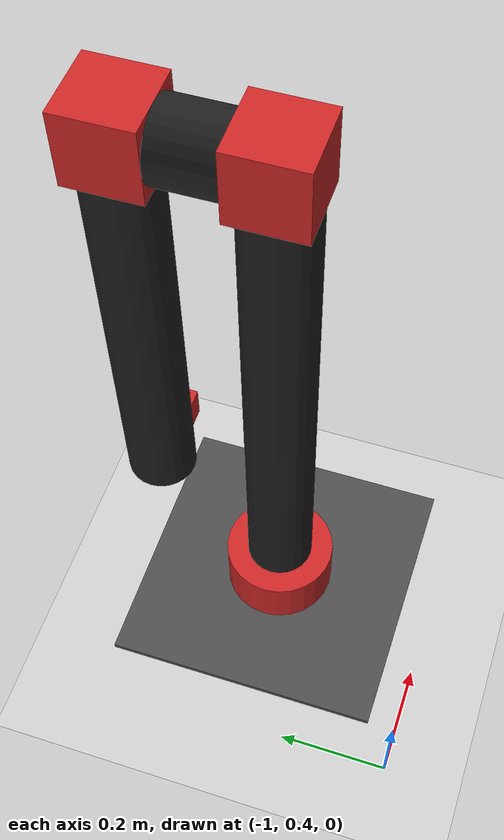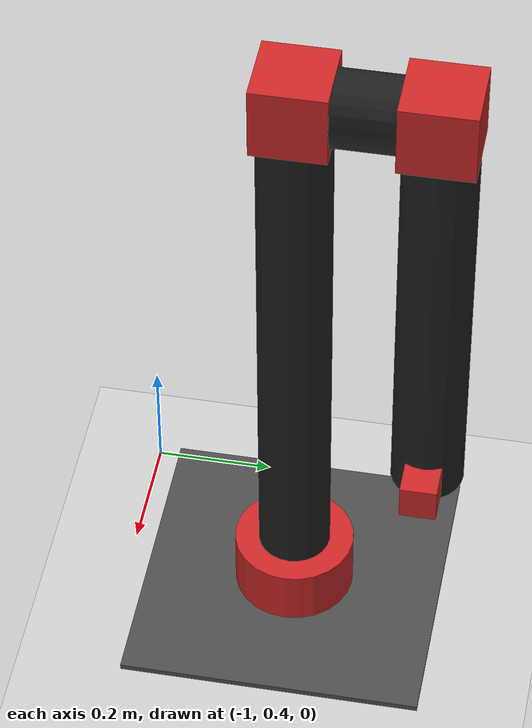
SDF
<sdf version="1.5">
 <world name="puzzle_world">
  <scene>
   <sky><clouds><speed>12.0</speed></clouds></sky>
   <shadows>true</shadows>
   <grid>false</grid>
   <origin_visual>false</origin_visual>
  </scene>
  <physics type="ode">
   <max_step_size>0.004</max_step_size>
   <real_time_factor>1</real_time_factor>
   <real_time_update_rate>250</real_time_update_rate>
   <magnetic_field>6.0e-6 2.3e-5 -4.2e-5</magnetic_field>
   <ode>
    <solver>
     <type>quick</type>
     <iters>10</iters>
     <sor>1.3</sor>
     <use_dynamic_moi_rescaling>0</use_dynamic_moi_rescaling>
    </solver>
    <constraints>
     <cfm>0</cfm>
     <erp>0.2</erp>
     <contact_max_correcting_vel>100</contact_max_correcting_vel>
     <contact_surface_layer>0.001</contact_surface_layer>
    </constraints>
   </ode>
  </physics>
  <include><uri>model://sun</uri></include>
  <include><uri>model://ground_plane</uri></include>
  <include><uri>model://asphalt_plane</uri></include>
  <include><uri>model://yp_gun</uri><pose>-0.7 0.7 0 0 0 0</pose></include>
 </world>
</sdf>

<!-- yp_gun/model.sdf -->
<sdf version='1.7'>
  <model name='yp_gun'>
    <pose>0 0 0 0 0 0</pose>
    <link name='base'>
      <inertial>
        <mass>2000</mass>
        <inertia>
          <ixx>10</ixx>
          <ixy>0</ixy>
          <ixz>0</ixz>
          <iyy>10</iyy>
          <iyz>0</iyz>
          <izz>10</izz>
        </inertia>
        <pose>0 0 0 0 0 0</pose>
      </inertial>
      <self_collide>0</self_collide>
      <enable_wind>0</enable_wind>
      <kinematic>0</kinematic>
      <pose>0 -0 0.125 0 -0 0</pose>
      <gravity>1</gravity>
      <visual name='visual_1'>
        <geometry>
          <cylinder>
            <radius>0.06</radius>
            <length>0.9</length>
          </cylinder>
        </geometry>
        <material>
          <script>
            <name>Gazebo/FlatBlack</name>
            <uri>file://media/materials/scripts/gazebo.material</uri>
          </script>
        </material>
        <pose>0 0 0.5 0 -0 0</pose>
        <transparency>0</transparency>
        <cast_shadows>1</cast_shadows>
      </visual>
      <visual name='visual'>
        <geometry>
          <cylinder>
            <radius>0.1</radius>
            <length>0.1</length>
          </cylinder>
        </geometry>
        <material>
          <script>
            <name>Gazebo/RedBright</name>
            <uri>file://media/materials/scripts/gazebo.material</uri>
          </script>
        </material>
        <pose>0 0 0 0 0 0</pose>
        <transparency>0</transparency>
        <cast_shadows>1</cast_shadows>
      </visual>
      <visual name='visual_2'>
        <geometry>
          <box>
            <size>0.5 0.5 0.01</size>
          </box>
        </geometry>
        <material>
          <script>
            <name>Gazebo/DarkGrey</name>
            <uri>file://media/materials/scripts/gazebo.material</uri>
          </script>
        </material>
        <pose>0 0 -0.055 0 -0 0</pose>
        <transparency>0</transparency>
        <cast_shadows>1</cast_shadows>
      </visual>
      <collision name='collision_2'>
        <laser_retro>0</laser_retro>
        <max_contacts>10</max_contacts>
        <pose>0 0 -0.055 0 -0 0</pose>
        <geometry>
          <box>
            <size>0.5 0.5 0.01</size>
          </box>
        </geometry>
        <surface>
          <friction>
            <ode>
              <mu>100</mu>
              <mu2>100</mu2>
              <fdir1>0 0 0</fdir1>
              <slip1>0</slip1>
              <slip2>0</slip2>
            </ode>
            <torsional>
              <coefficient>1</coefficient>
              <patch_radius>0</patch_radius>
              <surface_radius>0</surface_radius>
              <use_patch_radius>1</use_patch_radius>
              <ode>
                <slip>0</slip>
              </ode>
            </torsional>
          </friction>
          <bounce>
            <restitution_coefficient>0</restitution_coefficient>
            <threshold>1e+06</threshold>
          </bounce>
          <contact>
            <collide_without_contact>0</collide_without_contact>
            <collide_without_contact_bitmask>1</collide_without_contact_bitmask>
            <collide_bitmask>1</collide_bitmask>
            <ode>
              <soft_cfm>0</soft_cfm>
              <soft_erp>0.2</soft_erp>
              <kp>1e+13</kp>
              <kd>1</kd>
              <max_vel>0.01</max_vel>
              <min_depth>0</min_depth>
            </ode>
            <bullet>
              <split_impulse>1</split_impulse>
              <split_impulse_penetration_threshold>-0.01</split_impulse_penetration_threshold>
              <soft_cfm>0</soft_cfm>
              <soft_erp>0.2</soft_erp>
              <kp>1e+13</kp>
              <kd>1</kd>
            </bullet>
          </contact>
        </surface>
      </collision>
      <collision name='collision_1'>
        <laser_retro>0</laser_retro>
        <max_contacts>10</max_contacts>
        <pose>0 0 0.5 0 -0 0</pose>
        <geometry>
          <cylinder>
            <radius>0.06</radius>
            <length>0.9</length>
          </cylinder>
        </geometry>
        <surface>
          <friction>
            <ode>
              <mu>1</mu>
              <mu2>1</mu2>
              <fdir1>0 0 0</fdir1>
              <slip1>0</slip1>
              <slip2>0</slip2>
            </ode>
            <torsional>
              <coefficient>1</coefficient>
              <patch_radius>0</patch_radius>
              <surface_radius>0</surface_radius>
              <use_patch_radius>1</use_patch_radius>
              <ode>
                <slip>0</slip>
              </ode>
            </torsional>
          </friction>
          <bounce>
            <restitution_coefficient>0</restitution_coefficient>
            <threshold>1e+06</threshold>
          </bounce>
          <contact>
            <collide_without_contact>0</collide_without_contact>
            <collide_without_contact_bitmask>1</collide_without_contact_bitmask>
            <collide_bitmask>1</collide_bitmask>
            <ode>
              <soft_cfm>0</soft_cfm>
              <soft_erp>0.2</soft_erp>
              <kp>1e+13</kp>
              <kd>1</kd>
              <max_vel>0.01</max_vel>
              <min_depth>0</min_depth>
            </ode>
            <bullet>
              <split_impulse>1</split_impulse>
              <split_impulse_penetration_threshold>-0.01</split_impulse_penetration_threshold>
              <soft_cfm>0</soft_cfm>
              <soft_erp>0.2</soft_erp>
              <kp>1e+13</kp>
              <kd>1</kd>
            </bullet>
          </contact>
        </surface>
      </collision>
      <collision name='collision'>
        <laser_retro>0</laser_retro>
        <max_contacts>10</max_contacts>
        <pose>0 0 0 0 -0 0</pose>
        <geometry>
          <cylinder>
            <radius>0.1</radius>
            <length>0.1</length>
          </cylinder>
        </geometry>
        <surface>
          <friction>
            <ode>
              <mu>1</mu>
              <mu2>1</mu2>
              <fdir1>0 0 0</fdir1>
              <slip1>0</slip1>
              <slip2>0</slip2>
            </ode>
            <torsional>
              <coefficient>1</coefficient>
              <patch_radius>0</patch_radius>
              <surface_radius>0</surface_radius>
              <use_patch_radius>1</use_patch_radius>
              <ode>
                <slip>0</slip>
              </ode>
            </torsional>
          </friction>
          <bounce>
            <restitution_coefficient>0</restitution_coefficient>
            <threshold>1e+06</threshold>
          </bounce>
          <contact>
            <collide_without_contact>0</collide_without_contact>
            <collide_without_contact_bitmask>1</collide_without_contact_bitmask>
            <collide_bitmask>1</collide_bitmask>
            <ode>
              <soft_cfm>0</soft_cfm>
              <soft_erp>0.2</soft_erp>
              <kp>1e+13</kp>
              <kd>1</kd>
              <max_vel>0.01</max_vel>
              <min_depth>0</min_depth>
            </ode>
            <bullet>
              <split_impulse>1</split_impulse>
              <split_impulse_penetration_threshold>-0.01</split_impulse_penetration_threshold>
              <soft_cfm>0</soft_cfm>
              <soft_erp>0.2</soft_erp>
              <kp>1e+13</kp>
              <kd>1</kd>
            </bullet>
          </contact>
        </surface>
      </collision>
    </link>

    <link name='bullet_spawner'>
      <pose>-0.000279 0.22008 0.21715 2e-06 2e-06 -2.8e-05</pose>
      <gravity>0</gravity>
      <self_collide>0</self_collide>
      <kinematic>0</kinematic>
      <enable_wind>0</enable_wind>
      <inertial>
        <pose>0 0 0 0 -0 0</pose>
        <inertia>
          <ixx>.1</ixx>
          <ixy>0</ixy>
          <ixz>0</ixz>
          <iyy>.1</iyy>
          <iyz>0</iyz>
          <izz>.1</izz>
        </inertia>
        <mass>0.000001</mass>
      </inertial>
      <visual name='visual'>
        <pose>0 0 0 0 -0 0</pose>
        <geometry>
          <sphere>
            <radius>0.08</radius>
          </sphere>
        </geometry>
        <material>
          <lighting>1</lighting>
          <shader type='pixel'/>
        </material>
        <transparency>1</transparency>
        <cast_shadows>0</cast_shadows>
      </visual>
    </link>

    <link name='pitch_1'>
      <inertial>
        <mass>26.6242</mass>
        <inertia>
          <ixx>0.0159745</ixx>
          <ixy>0</ixy>
          <ixz>0</ixz>
          <iyy>0.0159745</iyy>
          <iyz>0</iyz>
          <izz>0.0159745</izz>
        </inertia>
        <pose>0 0 0 0 -0 0</pose>
      </inertial>
      <pose>-0 0.22 1.135 0 -0 0</pose>
      <self_collide>0</self_collide>
      <enable_wind>0</enable_wind>
      <kinematic>0</kinematic>
      <gravity>1</gravity>
      <visual name='visual'>
        <pose>0 0 0 0 -0 0</pose>
        <geometry>
          <box>
            <size>0.12 0.12 0.12</size>
          </box>
        </geometry>
        <material>
          <script>
            <name>Gazebo/RedBright</name>
            <uri>file://media/materials/scripts/gazebo.material</uri>
          </script>
        </material>
        <transparency>0</transparency>
        <cast_shadows>1</cast_shadows>
      </visual>
      <visual name='visual_1'>
        <geometry>
          <cylinder>
            <radius>0.06</radius>
            <length>0.7</length>
          </cylinder>
        </geometry>
        <material>
          <lighting>1</lighting>
          <script>
            <uri>file://media/materials/scripts/gazebo.material</uri>
            <name>Gazebo/FlatBlack</name>
          </script>
        </material>
        <pose>0 0 -0.41 0 -0 0</pose>
        <transparency>0</transparency>
        <cast_shadows>1</cast_shadows>
      </visual>
      <visual name='visual_2'>
        <pose>0.08 0 -0.72 0 -0 0</pose>
        <geometry>
          <box>
            <size>0.06 0.06 0.06</size>
          </box>
        </geometry>
        <material>
          <script>
            <name>Gazebo/RedBright</name>
            <uri>file://media/materials/scripts/gazebo.material</uri>
          </script>
        </material>
        <transparency>0</transparency>
        <cast_shadows>1</cast_shadows>
      </visual>

      <collision name='collision_3'>
        <laser_retro>0</laser_retro>
        <max_contacts>10</max_contacts>
        <pose>0.08 0 -0.72 0 -0 0</pose>
        <geometry>
          <box>
            <size>0.06 0.06 0.06</size>
          </box>
        </geometry>
        <surface>
          <friction>
            <ode>
              <mu>1</mu>
              <mu2>1</mu2>
              <fdir1>1 0 0</fdir1>
              <slip1>0</slip1>
              <slip2>0</slip2>
            </ode>
            <torsional>
              <coefficient>1</coefficient>
              <patch_radius>0</patch_radius>
              <surface_radius>0</surface_radius>
              <use_patch_radius>1</use_patch_radius>
              <ode>
                <slip>0</slip>
              </ode>
            </torsional>
          </friction>
          <bounce>
            <restitution_coefficient>0</restitution_coefficient>
            <threshold>1e+06</threshold>
          </bounce>
          <contact>
            <collide_without_contact>0</collide_without_contact>
            <collide_without_contact_bitmask>1</collide_without_contact_bitmask>
            <collide_bitmask>1</collide_bitmask>
            <ode>
              <soft_cfm>0</soft_cfm>
              <soft_erp>0.2</soft_erp>
              <kp>1e+13</kp>
              <kd>1</kd>
              <max_vel>0.01</max_vel>
              <min_depth>0</min_depth>
            </ode>
            <bullet>
              <split_impulse>1</split_impulse>
              <split_impulse_penetration_threshold>-0.01</split_impulse_penetration_threshold>
              <soft_cfm>0</soft_cfm>
              <soft_erp>0.2</soft_erp>
              <kp>1e+13</kp>
              <kd>1</kd>
            </bullet>
          </contact>
        </surface>
      </collision>
      <collision name='collision'>
        <laser_retro>0</laser_retro>
        <max_contacts>10</max_contacts>
        <pose>0 0 0 0 -0 0</pose>
        <geometry>
          <box>
            <size>0.12 0.12 0.12</size>
          </box>
        </geometry>
        <surface>
          <friction>
            <ode>
              <mu>1</mu>
              <mu2>1</mu2>
              <fdir1>0 0 0</fdir1>
              <slip1>0</slip1>
              <slip2>0</slip2>
            </ode>
            <torsional>
              <coefficient>1</coefficient>
              <patch_radius>0</patch_radius>
              <surface_radius>0</surface_radius>
              <use_patch_radius>1</use_patch_radius>
              <ode>
                <slip>0</slip>
              </ode>
            </torsional>
          </friction>
          <bounce>
            <restitution_coefficient>0</restitution_coefficient>
            <threshold>1e+06</threshold>
          </bounce>
          <contact>
            <collide_without_contact>0</collide_without_contact>
            <collide_without_contact_bitmask>1</collide_without_contact_bitmask>
            <collide_bitmask>1</collide_bitmask>
            <ode>
              <soft_cfm>0</soft_cfm>
              <soft_erp>0.2</soft_erp>
              <kp>1e+13</kp>
              <kd>1</kd>
              <max_vel>0.01</max_vel>
              <min_depth>0</min_depth>
            </ode>
            <bullet>
              <split_impulse>1</split_impulse>
              <split_impulse_penetration_threshold>-0.01</split_impulse_penetration_threshold>
              <soft_cfm>0</soft_cfm>
              <soft_erp>0.2</soft_erp>
              <kp>1e+13</kp>
              <kd>1</kd>
            </bullet>
          </contact>
        </surface>
      </collision>
      <collision name='collision_1'>
        <laser_retro>0</laser_retro>
        <max_contacts>10</max_contacts>
        <pose>0 0 -0.41 0 -0 0</pose>
        <geometry>
          <cylinder>
            <radius>0.06</radius>
            <length>0.7</length>
          </cylinder>
        </geometry>
        <surface>
          <friction>
            <ode>
              <mu>1</mu>
              <mu2>1</mu2>
              <fdir1>0 0 0</fdir1>
              <slip1>0</slip1>
              <slip2>0</slip2>
            </ode>
            <torsional>
              <coefficient>1</coefficient>
              <patch_radius>0</patch_radius>
              <surface_radius>0</surface_radius>
              <use_patch_radius>1</use_patch_radius>
              <ode>
                <slip>0</slip>
              </ode>
            </torsional>
          </friction>
          <bounce>
            <restitution_coefficient>0</restitution_coefficient>
            <threshold>1e+06</threshold>
          </bounce>
          <contact>
            <collide_without_contact>0</collide_without_contact>
            <collide_without_contact_bitmask>1</collide_without_contact_bitmask>
            <collide_bitmask>1</collide_bitmask>
            <ode>
              <soft_cfm>0</soft_cfm>
              <soft_erp>0.2</soft_erp>
              <kp>1e+13</kp>
              <kd>1</kd>
              <max_vel>0.01</max_vel>
              <min_depth>0</min_depth>
            </ode>
            <bullet>
              <split_impulse>1</split_impulse>
              <split_impulse_penetration_threshold>-0.01</split_impulse_penetration_threshold>
              <soft_cfm>0</soft_cfm>
              <soft_erp>0.2</soft_erp>
              <kp>1e+13</kp>
              <kd>1</kd>
            </bullet>
          </contact>
        </surface>
      </collision>
    </link>

    <link name='yaw_1'>
      <inertial>
        <mass>7.71923</mass>
        <inertia>
          <ixx>0.01338</ixx>
          <ixy>0</ixy>
          <ixz>0</ixz>
          <iyy>0.01338</iyy>
          <iyz>0</iyz>
          <izz>0.0138946</izz>
        </inertia>
        <pose>0 0 0 0 -0 0</pose>
      </inertial>
      <pose>-0 -0 1.135 0 -0 0</pose>
      <self_collide>0</self_collide>
      <enable_wind>0</enable_wind>
      <kinematic>0</kinematic>
      <gravity>1</gravity>
      <visual name='visual_2'>
        <geometry>
          <cylinder>
            <radius>0.06</radius>
            <length>0.1</length>
          </cylinder>
        </geometry>
        <material>
          <script>
            <name>Gazebo/FlatBlack</name>
            <uri>file://media/materials/scripts/gazebo.material</uri>
          </script>
        </material>
        <pose>0 0.11 0 1.57 -0 0</pose>
        <transparency>0</transparency>
        <cast_shadows>1</cast_shadows>
      </visual>
      <visual name='visual'>
        <geometry>
          <box>
            <size>0.12 0.12 0.12</size>
          </box>
        </geometry>
        <material>
          <script>
            <name>Gazebo/RedBright</name>
            <uri>file://media/materials/scripts/gazebo.material</uri>
          </script>
        </material>
        <pose>0 0 0 0 -0 0</pose>
        <transparency>0</transparency>
        <cast_shadows>1</cast_shadows>
      </visual>
      <collision name='collision'>
        <laser_retro>0</laser_retro>
        <max_contacts>10</max_contacts>
        <pose>0 0 0 0 -0 0</pose>
        <geometry>
          <box>
            <size>0.12 0.12 0.12</size>
          </box>
        </geometry>
        <surface>
          <friction>
            <ode>
              <mu>1</mu>
              <mu2>1</mu2>
              <fdir1>0 0 0</fdir1>
              <slip1>0</slip1>
              <slip2>0</slip2>
            </ode>
            <torsional>
              <coefficient>1</coefficient>
              <patch_radius>0</patch_radius>
              <surface_radius>0</surface_radius>
              <use_patch_radius>1</use_patch_radius>
              <ode>
                <slip>0</slip>
              </ode>
            </torsional>
          </friction>
          <bounce>
            <restitution_coefficient>0</restitution_coefficient>
            <threshold>1e+06</threshold>
          </bounce>
          <contact>
            <collide_without_contact>0</collide_without_contact>
            <collide_without_contact_bitmask>1</collide_without_contact_bitmask>
            <collide_bitmask>1</collide_bitmask>
            <ode>
              <soft_cfm>0</soft_cfm>
              <soft_erp>0.2</soft_erp>
              <kp>1e+13</kp>
              <kd>1</kd>
              <max_vel>0.01</max_vel>
              <min_depth>0</min_depth>
            </ode>
            <bullet>
              <split_impulse>1</split_impulse>
              <split_impulse_penetration_threshold>-0.01</split_impulse_penetration_threshold>
              <soft_cfm>0</soft_cfm>
              <soft_erp>0.2</soft_erp>
              <kp>1e+13</kp>
              <kd>1</kd>
            </bullet>
          </contact>
        </surface>
      </collision>
      <collision name='collision_2'>
        <laser_retro>0</laser_retro>
        <max_contacts>10</max_contacts>
        <pose>0 0.11 0 1.57 -0 0</pose>
        <geometry>
          <cylinder>
            <radius>0.06</radius>
            <length>0.1</length>
          </cylinder>
        </geometry>
        <surface>
          <friction>
            <ode>
              <mu>1</mu>
              <mu2>1</mu2>
              <fdir1>0 0 0</fdir1>
              <slip1>0</slip1>
              <slip2>0</slip2>
            </ode>
            <torsional>
              <coefficient>1</coefficient>
              <patch_radius>0</patch_radius>
              <surface_radius>0</surface_radius>
              <use_patch_radius>1</use_patch_radius>
              <ode>
                <slip>0</slip>
              </ode>
            </torsional>
          </friction>
          <bounce>
            <restitution_coefficient>0</restitution_coefficient>
            <threshold>1e+06</threshold>
          </bounce>
          <contact>
            <collide_without_contact>0</collide_without_contact>
            <collide_without_contact_bitmask>1</collide_without_contact_bitmask>
            <collide_bitmask>1</collide_bitmask>
            <ode>
              <soft_cfm>0</soft_cfm>
              <soft_erp>0.2</soft_erp>
              <kp>1e+13</kp>
              <kd>1</kd>
              <max_vel>0.01</max_vel>
              <min_depth>0</min_depth>
            </ode>
            <bullet>
              <split_impulse>1</split_impulse>
              <split_impulse_penetration_threshold>-0.01</split_impulse_penetration_threshold>
              <soft_cfm>0</soft_cfm>
              <soft_erp>0.2</soft_erp>
              <kp>1e+13</kp>
              <kd>1</kd>
            </bullet>
          </contact>
        </surface>
      </collision>
    </link>

    <joint name='base_yaw_1' type='revolute'>
      <parent>base</parent>
      <child>yaw_1</child>
      <pose>0 0 0 0 -0 0</pose>
      <axis>
        <xyz>0 0 -1</xyz>
        <limit>
          <lower>-1.79769e+308</lower>
          <upper>1.79769e+308</upper>
          <effort>-1</effort>
          <velocity>-1</velocity>
        </limit>
        <dynamics>
          <spring_reference>0</spring_reference>
          <spring_stiffness>0</spring_stiffness>
          <damping>0</damping>
          <friction>0</friction>
        </dynamics>
      </axis>
      <physics>
        <ode>
          <limit>
            <cfm>0</cfm>
            <erp>0.2</erp>
          </limit>
          <suspension>
            <cfm>0</cfm>
            <erp>0.2</erp>
          </suspension>
        </ode>
      </physics>
    </joint>

    <joint name='pitch_1_bullet_spawner' type='fixed'>
      <parent>bullet_spawner</parent>
      <child>pitch_1</child>
      <pose>0 0 0 0 -0 0</pose>
      <physics>
        <ode>
          <limit>
            <cfm>0</cfm>
            <erp>0.2</erp>
          </limit>
          <suspension>
            <cfm>0</cfm>
            <erp>0.2</erp>
          </suspension>
        </ode>
      </physics>
    </joint>

    <joint name='yaw_1_pitch_1' type='revolute'>
      <parent>yaw_1</parent>
      <child>pitch_1</child>
      <pose>0 0 0 0 -0 0</pose>
      <axis>
        <xyz>-0 -1 -0</xyz>
        <limit>
          <lower>-1.79769e+308</lower>
          <upper>1.79769e+308</upper>
          <effort>-1</effort>
          <velocity>-1</velocity>
        </limit>
        <dynamics>
          <spring_reference>0</spring_reference>
          <spring_stiffness>0</spring_stiffness>
          <damping>0</damping>
          <friction>0</friction>
        </dynamics>
      </axis>
      <physics>
        <ode>
          <limit>
            <cfm>0</cfm>
            <erp>0.2</erp>
          </limit>
          <suspension>
            <cfm>0</cfm>
            <erp>0.2</erp>
          </suspension>
        </ode>
      </physics>
    </joint>
    <static>0</static>
    <allow_auto_disable>1</allow_auto_disable>

    <plugin name='YPGunPlugin' filename='libYPGunPlugin.so'>
      <p_yaw>4.32</p_yaw>
      <i_yaw>0</i_yaw>
      <d_yaw>8</d_yaw>

      <p_pitch>40</p_pitch>
      <i_pitch>0</i_pitch>
      <d_pitch>10</d_pitch>

      <model name='olive'/>
    </plugin>
  </model>
</sdf>
